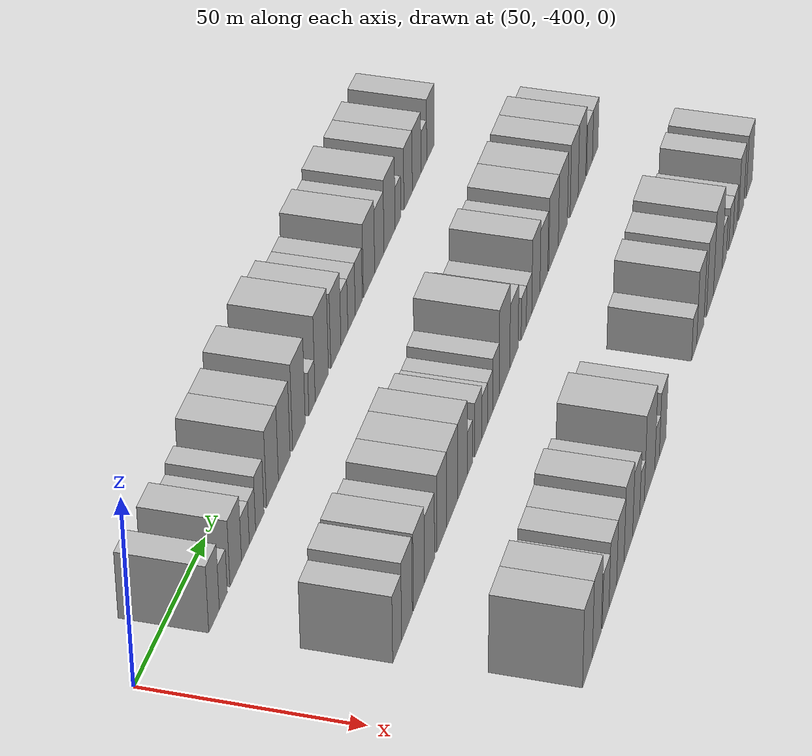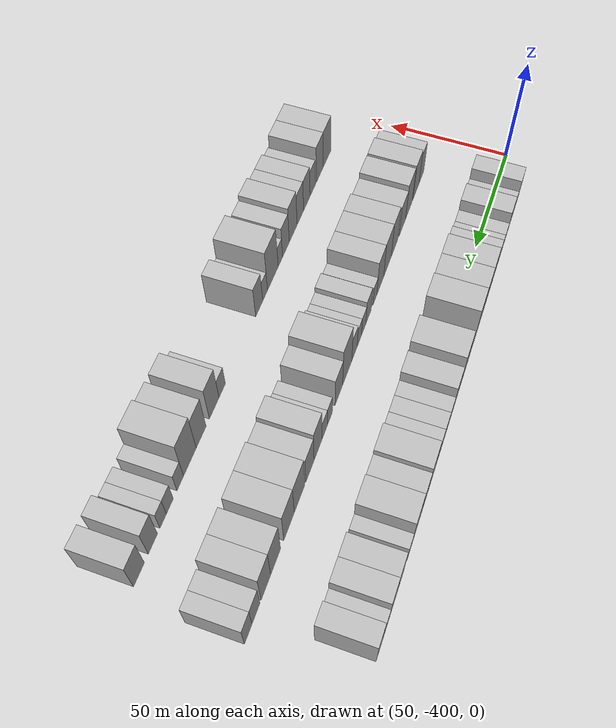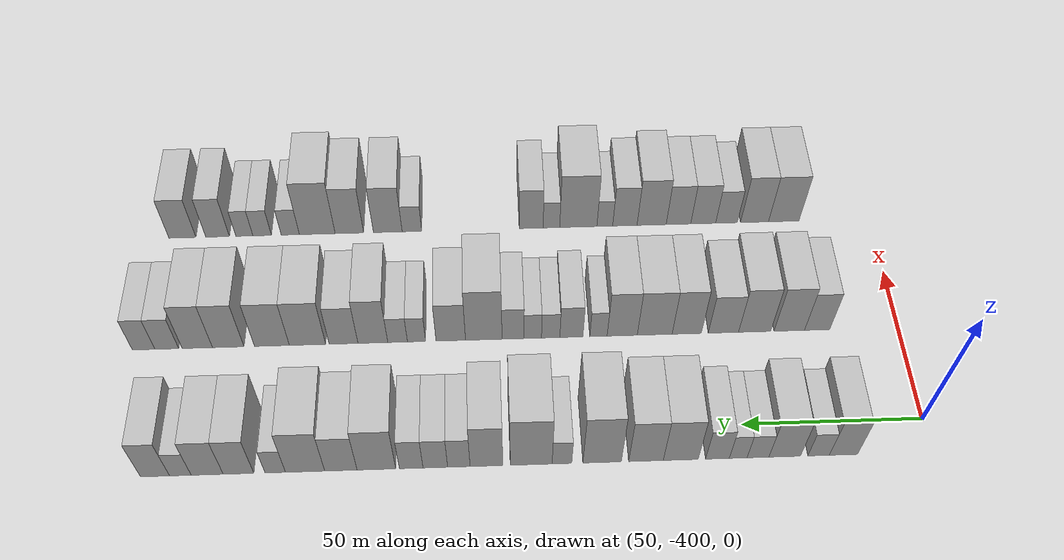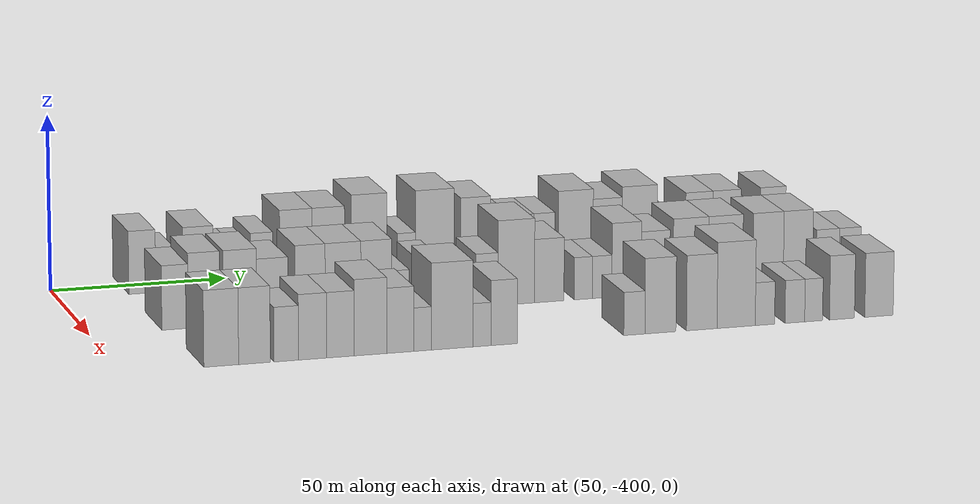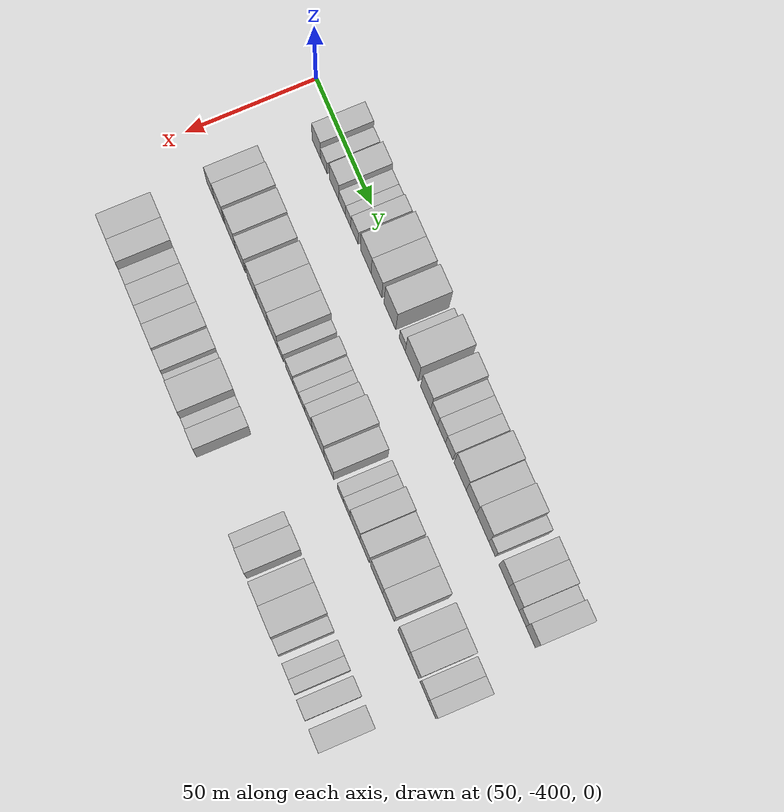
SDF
<sdf version="1.6">
 <world name="default">
  <model name="building_1">
   <static>1</static>
   <pose>50.0000 -376.1773 0 0.000000 0.000000 0.000000</pose>
   <link name="link">
    <pose>0 0 9.00 0 0 0</pose>
    <collision name="collision"><geometry><box><size>20.0000 7.6454 18.0000</size></box></geometry></collision>
    <visual name="visual">
     <cast_shadows>0</cast_shadows>
     <geometry><box><size>20.0000 7.6454 18.0000</size></box></geometry>
     <material>
      <script>
       <uri>model://HANNAS_wall/materials/scripts</uri>
       <uri>model://HANNAS_wall/materials/textures</uri>
       <name>vrc/HANNAS_wall</name>
      </script>
     </material>
    </visual>
   </link>
  </model>
  <model name="building_2">
   <static>1</static>
   <pose>50.0000 -369.4280 0 0.000000 0.000000 0.000000</pose>
   <link name="link">
    <pose>0 0 6.00 0 0 0</pose>
    <collision name="collision"><geometry><box><size>20.0000 5.8533 12.0000</size></box></geometry></collision>
    <visual name="visual">
     <cast_shadows>0</cast_shadows>
     <geometry><box><size>20.0000 5.8533 12.0000</size></box></geometry>
     <material>
      <script>
       <uri>model://HANNAS_wall/materials/scripts</uri>
       <uri>model://HANNAS_wall/materials/textures</uri>
       <name>vrc/HANNAS_wall</name>
      </script>
     </material>
    </visual>
   </link>
  </model>
  <model name="building_3">
   <static>1</static>
   <pose>50.0000 -360.2126 0 0.000000 0.000000 0.000000</pose>
   <link name="link">
    <pose>0 0 9.00 0 0 0</pose>
    <collision name="collision"><geometry><box><size>20.0000 8.5775 18.0000</size></box></geometry></collision>
    <visual name="visual">
     <cast_shadows>0</cast_shadows>
     <geometry><box><size>20.0000 8.5775 18.0000</size></box></geometry>
     <material>
      <script>
       <uri>model://HANNAS_wall/materials/scripts</uri>
       <uri>model://HANNAS_wall/materials/textures</uri>
       <name>vrc/HANNAS_wall</name>
      </script>
     </material>
    </visual>
   </link>
  </model>
  <model name="building_4">
   <static>1</static>
   <pose>50.0000 -352.9689 0 0.000000 0.000000 0.000000</pose>
   <link name="link">
    <pose>0 0 6.00 0 0 0</pose>
    <collision name="collision"><geometry><box><size>20.0000 5.9098 12.0000</size></box></geometry></collision>
    <visual name="visual">
     <cast_shadows>0</cast_shadows>
     <geometry><box><size>20.0000 5.9098 12.0000</size></box></geometry>
     <material>
      <script>
       <uri>model://HANNAS_wall/materials/scripts</uri>
       <uri>model://HANNAS_wall/materials/textures</uri>
       <name>vrc/HANNAS_wall</name>
      </script>
     </material>
    </visual>
   </link>
  </model>
  <model name="building_5">
   <static>1</static>
   <pose>50.0000 -347.6071 0 0.000000 0.000000 0.000000</pose>
   <link name="link">
    <pose>0 0 6.00 0 0 0</pose>
    <collision name="collision"><geometry><box><size>20.0000 4.8138 12.0000</size></box></geometry></collision>
    <visual name="visual">
     <cast_shadows>0</cast_shadows>
     <geometry><box><size>20.0000 4.8138 12.0000</size></box></geometry>
     <material>
      <script>
       <uri>model://HANNAS_wall/materials/scripts</uri>
       <uri>model://HANNAS_wall/materials/textures</uri>
       <name>vrc/HANNAS_wall</name>
      </script>
     </material>
    </visual>
   </link>
  </model>
  <model name="building_6">
   <static>1</static>
   <pose>50.0000 -341.9964 0 0.000000 0.000000 0.000000</pose>
   <link name="link">
    <pose>0 0 7.50 0 0 0</pose>
    <collision name="collision"><geometry><box><size>20.0000 6.4076 15.0000</size></box></geometry></collision>
    <visual name="visual">
     <cast_shadows>0</cast_shadows>
     <geometry><box><size>20.0000 6.4076 15.0000</size></box></geometry>
     <material>
      <script>
       <uri>model://HANNAS_wall/materials/scripts</uri>
       <uri>model://HANNAS_wall/materials/textures</uri>
       <name>vrc/HANNAS_wall</name>
      </script>
     </material>
    </visual>
   </link>
  </model>
  <model name="building_7">
   <static>1</static>
   <pose>50.0000 -332.0853 0 0.000000 0.000000 0.000000</pose>
   <link name="link">
    <pose>0 0 10.50 0 0 0</pose>
    <collision name="collision"><geometry><box><size>20.0000 9.4145 21.0000</size></box></geometry></collision>
    <visual name="visual">
     <cast_shadows>0</cast_shadows>
     <geometry><box><size>20.0000 9.4145 21.0000</size></box></geometry>
     <material>
      <script>
       <uri>model://HANNAS_wall/materials/scripts</uri>
       <uri>model://HANNAS_wall/materials/textures</uri>
       <name>vrc/HANNAS_wall</name>
      </script>
     </material>
    </visual>
   </link>
  </model>
  <model name="building_8">
   <static>1</static>
   <pose>50.0000 -322.7095 0 0.000000 0.000000 0.000000</pose>
   <link name="link">
    <pose>0 0 10.50 0 0 0</pose>
    <collision name="collision"><geometry><box><size>20.0000 9.3371 21.0000</size></box></geometry></collision>
    <visual name="visual">
     <cast_shadows>0</cast_shadows>
     <geometry><box><size>20.0000 9.3371 21.0000</size></box></geometry>
     <material>
      <script>
       <uri>model://HANNAS_wall/materials/scripts</uri>
       <uri>model://HANNAS_wall/materials/textures</uri>
       <name>vrc/HANNAS_wall</name>
      </script>
     </material>
    </visual>
   </link>
  </model>
  <model name="building_9">
   <static>1</static>
   <pose>50.0000 -310.8706 0 0.000000 0.000000 0.000000</pose>
   <link name="link">
    <pose>0 0 12.00 0 0 0</pose>
    <collision name="collision"><geometry><box><size>20.0000 10.3408 24.0000</size></box></geometry></collision>
    <visual name="visual">
     <cast_shadows>0</cast_shadows>
     <geometry><box><size>20.0000 10.3408 24.0000</size></box></geometry>
     <material>
      <script>
       <uri>model://HANNAS_wall/materials/scripts</uri>
       <uri>model://HANNAS_wall/materials/textures</uri>
       <name>vrc/HANNAS_wall</name>
      </script>
     </material>
    </visual>
   </link>
  </model>
  <model name="building_10">
   <static>1</static>
   <pose>50.0000 -300.0597 0 0.000000 0.000000 0.000000</pose>
   <link name="link">
    <pose>0 0 6.00 0 0 0</pose>
    <collision name="collision"><geometry><box><size>20.0000 5.2810 12.0000</size></box></geometry></collision>
    <visual name="visual">
     <cast_shadows>0</cast_shadows>
     <geometry><box><size>20.0000 5.2810 12.0000</size></box></geometry>
     <material>
      <script>
       <uri>model://HANNAS_wall/materials/scripts</uri>
       <uri>model://HANNAS_wall/materials/textures</uri>
       <name>vrc/HANNAS_wall</name>
      </script>
     </material>
    </visual>
   </link>
  </model>
  <model name="building_11">
   <static>1</static>
   <pose>50.0000 -291.8017 0 0.000000 0.000000 0.000000</pose>
   <link name="link">
    <pose>0 0 12.00 0 0 0</pose>
    <collision name="collision"><geometry><box><size>20.0000 11.2349 24.0000</size></box></geometry></collision>
    <visual name="visual">
     <cast_shadows>0</cast_shadows>
     <geometry><box><size>20.0000 11.2349 24.0000</size></box></geometry>
     <material>
      <script>
       <uri>model://HANNAS_wall/materials/scripts</uri>
       <uri>model://HANNAS_wall/materials/textures</uri>
       <name>vrc/HANNAS_wall</name>
      </script>
     </material>
    </visual>
   </link>
  </model>
  <model name="building_12">
   <static>1</static>
   <pose>50.0000 -279.7944 0 0.000000 0.000000 0.000000</pose>
   <link name="link">
    <pose>0 0 10.50 0 0 0</pose>
    <collision name="collision"><geometry><box><size>20.0000 8.7797 21.0000</size></box></geometry></collision>
    <visual name="visual">
     <cast_shadows>0</cast_shadows>
     <geometry><box><size>20.0000 8.7797 21.0000</size></box></geometry>
     <material>
      <script>
       <uri>model://HANNAS_wall/materials/scripts</uri>
       <uri>model://HANNAS_wall/materials/textures</uri>
       <name>vrc/HANNAS_wall</name>
      </script>
     </material>
    </visual>
   </link>
  </model>
  <model name="building_13">
   <static>1</static>
   <pose>50.0000 -272.3969 0 0.000000 0.000000 0.000000</pose>
   <link name="link">
    <pose>0 0 7.50 0 0 0</pose>
    <collision name="collision"><geometry><box><size>20.0000 6.0153 15.0000</size></box></geometry></collision>
    <visual name="visual">
     <cast_shadows>0</cast_shadows>
     <geometry><box><size>20.0000 6.0153 15.0000</size></box></geometry>
     <material>
      <script>
       <uri>model://HANNAS_wall/materials/scripts</uri>
       <uri>model://HANNAS_wall/materials/textures</uri>
       <name>vrc/HANNAS_wall</name>
      </script>
     </material>
    </visual>
   </link>
  </model>
  <model name="building_14">
   <static>1</static>
   <pose>50.0000 -266.0947 0 0.000000 0.000000 0.000000</pose>
   <link name="link">
    <pose>0 0 7.50 0 0 0</pose>
    <collision name="collision"><geometry><box><size>20.0000 6.5892 15.0000</size></box></geometry></collision>
    <visual name="visual">
     <cast_shadows>0</cast_shadows>
     <geometry><box><size>20.0000 6.5892 15.0000</size></box></geometry>
     <material>
      <script>
       <uri>model://HANNAS_wall/materials/scripts</uri>
       <uri>model://HANNAS_wall/materials/textures</uri>
       <name>vrc/HANNAS_wall</name>
      </script>
     </material>
    </visual>
   </link>
  </model>
  <model name="building_15">
   <static>1</static>
   <pose>50.0000 -259.6454 0 0.000000 0.000000 0.000000</pose>
   <link name="link">
    <pose>0 0 7.50 0 0 0</pose>
    <collision name="collision"><geometry><box><size>20.0000 6.3095 15.0000</size></box></geometry></collision>
    <visual name="visual">
     <cast_shadows>0</cast_shadows>
     <geometry><box><size>20.0000 6.3095 15.0000</size></box></geometry>
     <material>
      <script>
       <uri>model://HANNAS_wall/materials/scripts</uri>
       <uri>model://HANNAS_wall/materials/textures</uri>
       <name>vrc/HANNAS_wall</name>
      </script>
     </material>
    </visual>
   </link>
  </model>
  <model name="building_16">
   <static>1</static>
   <pose>50.0000 -250.3355 0 0.000000 0.000000 0.000000</pose>
   <link name="link">
    <pose>0 0 10.50 0 0 0</pose>
    <collision name="collision"><geometry><box><size>20.0000 10.3103 21.0000</size></box></geometry></collision>
    <visual name="visual">
     <cast_shadows>0</cast_shadows>
     <geometry><box><size>20.0000 10.3103 21.0000</size></box></geometry>
     <material>
      <script>
       <uri>model://HANNAS_wall/materials/scripts</uri>
       <uri>model://HANNAS_wall/materials/textures</uri>
       <name>vrc/HANNAS_wall</name>
      </script>
     </material>
    </visual>
   </link>
  </model>
  <model name="building_17">
   <static>1</static>
   <pose>50.0000 -240.8543 0 0.000000 0.000000 0.000000</pose>
   <link name="link">
    <pose>0 0 9.00 0 0 0</pose>
    <collision name="collision"><geometry><box><size>20.0000 8.6520 18.0000</size></box></geometry></collision>
    <visual name="visual">
     <cast_shadows>0</cast_shadows>
     <geometry><box><size>20.0000 8.6520 18.0000</size></box></geometry>
     <material>
      <script>
       <uri>model://HANNAS_wall/materials/scripts</uri>
       <uri>model://HANNAS_wall/materials/textures</uri>
       <name>vrc/HANNAS_wall</name>
      </script>
     </material>
    </visual>
   </link>
  </model>
  <model name="building_18">
   <static>1</static>
   <pose>50.0000 -231.2981 0 0.000000 0.000000 0.000000</pose>
   <link name="link">
    <pose>0 0 10.50 0 0 0</pose>
    <collision name="collision"><geometry><box><size>20.0000 10.4602 21.0000</size></box></geometry></collision>
    <visual name="visual">
     <cast_shadows>0</cast_shadows>
     <geometry><box><size>20.0000 10.4602 21.0000</size></box></geometry>
     <material>
      <script>
       <uri>model://HANNAS_wall/materials/scripts</uri>
       <uri>model://HANNAS_wall/materials/textures</uri>
       <name>vrc/HANNAS_wall</name>
      </script>
     </material>
    </visual>
   </link>
  </model>
  <model name="building_19">
   <static>1</static>
   <pose>50.0000 -223.3502 0 0.000000 0.000000 0.000000</pose>
   <link name="link">
    <pose>0 0 6.00 0 0 0</pose>
    <collision name="collision"><geometry><box><size>20.0000 5.4357 12.0000</size></box></geometry></collision>
    <visual name="visual">
     <cast_shadows>0</cast_shadows>
     <geometry><box><size>20.0000 5.4357 12.0000</size></box></geometry>
     <material>
      <script>
       <uri>model://HANNAS_wall/materials/scripts</uri>
       <uri>model://HANNAS_wall/materials/textures</uri>
       <name>vrc/HANNAS_wall</name>
      </script>
     </material>
    </visual>
   </link>
  </model>
  <model name="building_20">
   <static>1</static>
   <pose>50.0000 -213.5637 0 0.000000 0.000000 0.000000</pose>
   <link name="link">
    <pose>0 0 9.00 0 0 0</pose>
    <collision name="collision"><geometry><box><size>20.0000 8.1372 18.0000</size></box></geometry></collision>
    <visual name="visual">
     <cast_shadows>0</cast_shadows>
     <geometry><box><size>20.0000 8.1372 18.0000</size></box></geometry>
     <material>
      <script>
       <uri>model://HANNAS_wall/materials/scripts</uri>
       <uri>model://HANNAS_wall/materials/textures</uri>
       <name>vrc/HANNAS_wall</name>
      </script>
     </material>
    </visual>
   </link>
  </model>
  <model name="building_21">
   <static>1</static>
   <pose>50.0000 -205.2399 0 0.000000 0.000000 0.000000</pose>
   <link name="link">
    <pose>0 0 9.00 0 0 0</pose>
    <collision name="collision"><geometry><box><size>20.0000 8.5105 18.0000</size></box></geometry></collision>
    <visual name="visual">
     <cast_shadows>0</cast_shadows>
     <geometry><box><size>20.0000 8.5105 18.0000</size></box></geometry>
     <material>
      <script>
       <uri>model://HANNAS_wall/materials/scripts</uri>
       <uri>model://HANNAS_wall/materials/textures</uri>
       <name>vrc/HANNAS_wall</name>
      </script>
     </material>
    </visual>
   </link>
  </model>
  <model name="building_22">
   <static>1</static>
   <pose>50.0000 -198.1130 0 0.000000 0.000000 0.000000</pose>
   <link name="link">
    <pose>0 0 6.00 0 0 0</pose>
    <collision name="collision"><geometry><box><size>20.0000 5.7434 12.0000</size></box></geometry></collision>
    <visual name="visual">
     <cast_shadows>0</cast_shadows>
     <geometry><box><size>20.0000 5.7434 12.0000</size></box></geometry>
     <material>
      <script>
       <uri>model://HANNAS_wall/materials/scripts</uri>
       <uri>model://HANNAS_wall/materials/textures</uri>
       <name>vrc/HANNAS_wall</name>
      </script>
     </material>
    </visual>
   </link>
  </model>
  <model name="building_23">
   <static>1</static>
   <pose>50.0000 -191.3917 0 0.000000 0.000000 0.000000</pose>
   <link name="link">
    <pose>0 0 9.00 0 0 0</pose>
    <collision name="collision"><geometry><box><size>20.0000 7.6992 18.0000</size></box></geometry></collision>
    <visual name="visual">
     <cast_shadows>0</cast_shadows>
     <geometry><box><size>20.0000 7.6992 18.0000</size></box></geometry>
     <material>
      <script>
       <uri>model://HANNAS_wall/materials/scripts</uri>
       <uri>model://HANNAS_wall/materials/textures</uri>
       <name>vrc/HANNAS_wall</name>
      </script>
     </material>
    </visual>
   </link>
  </model>
  <model name="building_91">
   <static>1</static>
   <pose>90.0000 -376.3325 0 0.000000 0.000000 0.000000</pose>
   <link name="link">
    <pose>0 0 9.00 0 0 0</pose>
    <collision name="collision"><geometry><box><size>20.0000 7.3351 18.0000</size></box></geometry></collision>
    <visual name="visual">
     <cast_shadows>0</cast_shadows>
     <geometry><box><size>20.0000 7.3351 18.0000</size></box></geometry>
     <material>
      <script>
       <uri>model://HANNAS_wall/materials/scripts</uri>
       <uri>model://HANNAS_wall/materials/textures</uri>
       <name>vrc/HANNAS_wall</name>
      </script>
     </material>
    </visual>
   </link>
  </model>
  <model name="building_92">
   <static>1</static>
   <pose>90.0000 -368.2285 0 0.000000 0.000000 0.000000</pose>
   <link name="link">
    <pose>0 0 10.50 0 0 0</pose>
    <collision name="collision"><geometry><box><size>20.0000 8.8730 21.0000</size></box></geometry></collision>
    <visual name="visual">
     <cast_shadows>0</cast_shadows>
     <geometry><box><size>20.0000 8.8730 21.0000</size></box></geometry>
     <material>
      <script>
       <uri>model://HANNAS_wall/materials/scripts</uri>
       <uri>model://HANNAS_wall/materials/textures</uri>
       <name>vrc/HANNAS_wall</name>
      </script>
     </material>
    </visual>
   </link>
  </model>
  <model name="building_93">
   <static>1</static>
   <pose>90.0000 -358.1230 0 0.000000 0.000000 0.000000</pose>
   <link name="link">
    <pose>0 0 10.50 0 0 0</pose>
    <collision name="collision"><geometry><box><size>20.0000 9.3380 21.0000</size></box></geometry></collision>
    <visual name="visual">
     <cast_shadows>0</cast_shadows>
     <geometry><box><size>20.0000 9.3380 21.0000</size></box></geometry>
     <material>
      <script>
       <uri>model://HANNAS_wall/materials/scripts</uri>
       <uri>model://HANNAS_wall/materials/textures</uri>
       <name>vrc/HANNAS_wall</name>
      </script>
     </material>
    </visual>
   </link>
  </model>
  <model name="building_94">
   <static>1</static>
   <pose>90.0000 -349.0626 0 0.000000 0.000000 0.000000</pose>
   <link name="link">
    <pose>0 0 9.00 0 0 0</pose>
    <collision name="collision"><geometry><box><size>20.0000 8.7827 18.0000</size></box></geometry></collision>
    <visual name="visual">
     <cast_shadows>0</cast_shadows>
     <geometry><box><size>20.0000 8.7827 18.0000</size></box></geometry>
     <material>
      <script>
       <uri>model://HANNAS_wall/materials/scripts</uri>
       <uri>model://HANNAS_wall/materials/textures</uri>
       <name>vrc/HANNAS_wall</name>
      </script>
     </material>
    </visual>
   </link>
  </model>
  <model name="building_95">
   <static>1</static>
   <pose>90.0000 -338.4254 0 0.000000 0.000000 0.000000</pose>
   <link name="link">
    <pose>0 0 10.50 0 0 0</pose>
    <collision name="collision"><geometry><box><size>20.0000 8.4918 21.0000</size></box></geometry></collision>
    <visual name="visual">
     <cast_shadows>0</cast_shadows>
     <geometry><box><size>20.0000 8.4918 21.0000</size></box></geometry>
     <material>
      <script>
       <uri>model://HANNAS_wall/materials/scripts</uri>
       <uri>model://HANNAS_wall/materials/textures</uri>
       <name>vrc/HANNAS_wall</name>
      </script>
     </material>
    </visual>
   </link>
  </model>
  <model name="building_96">
   <static>1</static>
   <pose>90.0000 -329.1354 0 0.000000 0.000000 0.000000</pose>
   <link name="link">
    <pose>0 0 10.50 0 0 0</pose>
    <collision name="collision"><geometry><box><size>20.0000 10.0883 21.0000</size></box></geometry></collision>
    <visual name="visual">
     <cast_shadows>0</cast_shadows>
     <geometry><box><size>20.0000 10.0883 21.0000</size></box></geometry>
     <material>
      <script>
       <uri>model://HANNAS_wall/materials/scripts</uri>
       <uri>model://HANNAS_wall/materials/textures</uri>
       <name>vrc/HANNAS_wall</name>
      </script>
     </material>
    </visual>
   </link>
  </model>
  <model name="building_97">
   <static>1</static>
   <pose>90.0000 -319.7221 0 0.000000 0.000000 0.000000</pose>
   <link name="link">
    <pose>0 0 10.50 0 0 0</pose>
    <collision name="collision"><geometry><box><size>20.0000 8.7383 21.0000</size></box></geometry></collision>
    <visual name="visual">
     <cast_shadows>0</cast_shadows>
     <geometry><box><size>20.0000 8.7383 21.0000</size></box></geometry>
     <material>
      <script>
       <uri>model://HANNAS_wall/materials/scripts</uri>
       <uri>model://HANNAS_wall/materials/textures</uri>
       <name>vrc/HANNAS_wall</name>
      </script>
     </material>
    </visual>
   </link>
  </model>
  <model name="building_98">
   <static>1</static>
   <pose>90.0000 -312.8563 0 0.000000 0.000000 0.000000</pose>
   <link name="link">
    <pose>0 0 6.00 0 0 0</pose>
    <collision name="collision"><geometry><box><size>20.0000 4.9933 12.0000</size></box></geometry></collision>
    <visual name="visual">
     <cast_shadows>0</cast_shadows>
     <geometry><box><size>20.0000 4.9933 12.0000</size></box></geometry>
     <material>
      <script>
       <uri>model://HANNAS_wall/materials/scripts</uri>
       <uri>model://HANNAS_wall/materials/textures</uri>
       <name>vrc/HANNAS_wall</name>
      </script>
     </material>
    </visual>
   </link>
  </model>
  <model name="building_99">
   <static>1</static>
   <pose>90.0000 -305.0267 0 0.000000 0.000000 0.000000</pose>
   <link name="link">
    <pose>0 0 7.50 0 0 0</pose>
    <collision name="collision"><geometry><box><size>20.0000 6.6660 15.0000</size></box></geometry></collision>
    <visual name="visual">
     <cast_shadows>0</cast_shadows>
     <geometry><box><size>20.0000 6.6660 15.0000</size></box></geometry>
     <material>
      <script>
       <uri>model://HANNAS_wall/materials/scripts</uri>
       <uri>model://HANNAS_wall/materials/textures</uri>
       <name>vrc/HANNAS_wall</name>
      </script>
     </material>
    </visual>
   </link>
  </model>
  <model name="building_100">
   <static>1</static>
   <pose>90.0000 -299.0484 0 0.000000 0.000000 0.000000</pose>
   <link name="link">
    <pose>0 0 6.00 0 0 0</pose>
    <collision name="collision"><geometry><box><size>20.0000 5.2906 12.0000</size></box></geometry></collision>
    <visual name="visual">
     <cast_shadows>0</cast_shadows>
     <geometry><box><size>20.0000 5.2906 12.0000</size></box></geometry>
     <material>
      <script>
       <uri>model://HANNAS_wall/materials/scripts</uri>
       <uri>model://HANNAS_wall/materials/textures</uri>
       <name>vrc/HANNAS_wall</name>
      </script>
     </material>
    </visual>
   </link>
  </model>
  <model name="building_101">
   <static>1</static>
   <pose>90.0000 -293.8878 0 0.000000 0.000000 0.000000</pose>
   <link name="link">
    <pose>0 0 6.00 0 0 0</pose>
    <collision name="collision"><geometry><box><size>20.0000 5.0306 12.0000</size></box></geometry></collision>
    <visual name="visual">
     <cast_shadows>0</cast_shadows>
     <geometry><box><size>20.0000 5.0306 12.0000</size></box></geometry>
     <material>
      <script>
       <uri>model://HANNAS_wall/materials/scripts</uri>
       <uri>model://HANNAS_wall/materials/textures</uri>
       <name>vrc/HANNAS_wall</name>
      </script>
     </material>
    </visual>
   </link>
  </model>
  <model name="building_102">
   <static>1</static>
   <pose>90.0000 -288.2027 0 0.000000 0.000000 0.000000</pose>
   <link name="link">
    <pose>0 0 7.50 0 0 0</pose>
    <collision name="collision"><geometry><box><size>20.0000 6.3395 15.0000</size></box></geometry></collision>
    <visual name="visual">
     <cast_shadows>0</cast_shadows>
     <geometry><box><size>20.0000 6.3395 15.0000</size></box></geometry>
     <material>
      <script>
       <uri>model://HANNAS_wall/materials/scripts</uri>
       <uri>model://HANNAS_wall/materials/textures</uri>
       <name>vrc/HANNAS_wall</name>
      </script>
     </material>
    </visual>
   </link>
  </model>
  <model name="building_103">
   <static>1</static>
   <pose>90.0000 -279.7752 0 0.000000 0.000000 0.000000</pose>
   <link name="link">
    <pose>0 0 12.00 0 0 0</pose>
    <collision name="collision"><geometry><box><size>20.0000 10.5155 24.0000</size></box></geometry></collision>
    <visual name="visual">
     <cast_shadows>0</cast_shadows>
     <geometry><box><size>20.0000 10.5155 24.0000</size></box></geometry>
     <material>
      <script>
       <uri>model://HANNAS_wall/materials/scripts</uri>
       <uri>model://HANNAS_wall/materials/textures</uri>
       <name>vrc/HANNAS_wall</name>
      </script>
     </material>
    </visual>
   </link>
  </model>
  <model name="building_104">
   <static>1</static>
   <pose>90.0000 -270.2797 0 0.000000 0.000000 0.000000</pose>
   <link name="link">
    <pose>0 0 9.00 0 0 0</pose>
    <collision name="collision"><geometry><box><size>20.0000 8.4756 18.0000</size></box></geometry></collision>
    <visual name="visual">
     <cast_shadows>0</cast_shadows>
     <geometry><box><size>20.0000 8.4756 18.0000</size></box></geometry>
     <material>
      <script>
       <uri>model://HANNAS_wall/materials/scripts</uri>
       <uri>model://HANNAS_wall/materials/textures</uri>
       <name>vrc/HANNAS_wall</name>
      </script>
     </material>
    </visual>
   </link>
  </model>
  <model name="building_105">
   <static>1</static>
   <pose>90.0000 -260.4324 0 0.000000 0.000000 0.000000</pose>
   <link name="link">
    <pose>0 0 6.00 0 0 0</pose>
    <collision name="collision"><geometry><box><size>20.0000 5.2190 12.0000</size></box></geometry></collision>
    <visual name="visual">
     <cast_shadows>0</cast_shadows>
     <geometry><box><size>20.0000 5.2190 12.0000</size></box></geometry>
     <material>
      <script>
       <uri>model://HANNAS_wall/materials/scripts</uri>
       <uri>model://HANNAS_wall/materials/textures</uri>
       <name>vrc/HANNAS_wall</name>
      </script>
     </material>
    </visual>
   </link>
  </model>
  <model name="building_106">
   <static>1</static>
   <pose>90.0000 -254.9983 0 0.000000 0.000000 0.000000</pose>
   <link name="link">
    <pose>0 0 6.00 0 0 0</pose>
    <collision name="collision"><geometry><box><size>20.0000 5.6492 12.0000</size></box></geometry></collision>
    <visual name="visual">
     <cast_shadows>0</cast_shadows>
     <geometry><box><size>20.0000 5.6492 12.0000</size></box></geometry>
     <material>
      <script>
       <uri>model://HANNAS_wall/materials/scripts</uri>
       <uri>model://HANNAS_wall/materials/textures</uri>
       <name>vrc/HANNAS_wall</name>
      </script>
     </material>
    </visual>
   </link>
  </model>
  <model name="building_107">
   <static>1</static>
   <pose>90.0000 -247.8968 0 0.000000 0.000000 0.000000</pose>
   <link name="link">
    <pose>0 0 10.50 0 0 0</pose>
    <collision name="collision"><geometry><box><size>20.0000 8.5538 21.0000</size></box></geometry></collision>
    <visual name="visual">
     <cast_shadows>0</cast_shadows>
     <geometry><box><size>20.0000 8.5538 21.0000</size></box></geometry>
     <material>
      <script>
       <uri>model://HANNAS_wall/materials/scripts</uri>
       <uri>model://HANNAS_wall/materials/textures</uri>
       <name>vrc/HANNAS_wall</name>
      </script>
     </material>
    </visual>
   </link>
  </model>
  <model name="building_108">
   <static>1</static>
   <pose>90.0000 -239.4897 0 0.000000 0.000000 0.000000</pose>
   <link name="link">
    <pose>0 0 9.00 0 0 0</pose>
    <collision name="collision"><geometry><box><size>20.0000 8.2604 18.0000</size></box></geometry></collision>
    <visual name="visual">
     <cast_shadows>0</cast_shadows>
     <geometry><box><size>20.0000 8.2604 18.0000</size></box></geometry>
     <material>
      <script>
       <uri>model://HANNAS_wall/materials/scripts</uri>
       <uri>model://HANNAS_wall/materials/textures</uri>
       <name>vrc/HANNAS_wall</name>
      </script>
     </material>
    </visual>
   </link>
  </model>
  <model name="building_109">
   <static>1</static>
   <pose>90.0000 -229.1616 0 0.000000 0.000000 0.000000</pose>
   <link name="link">
    <pose>0 0 10.50 0 0 0</pose>
    <collision name="collision"><geometry><box><size>20.0000 10.3957 21.0000</size></box></geometry></collision>
    <visual name="visual">
     <cast_shadows>0</cast_shadows>
     <geometry><box><size>20.0000 10.3957 21.0000</size></box></geometry>
     <material>
      <script>
       <uri>model://HANNAS_wall/materials/scripts</uri>
       <uri>model://HANNAS_wall/materials/textures</uri>
       <name>vrc/HANNAS_wall</name>
      </script>
     </material>
    </visual>
   </link>
  </model>
  <model name="building_110">
   <static>1</static>
   <pose>90.0000 -218.9767 0 0.000000 0.000000 0.000000</pose>
   <link name="link">
    <pose>0 0 10.50 0 0 0</pose>
    <collision name="collision"><geometry><box><size>20.0000 9.9743 21.0000</size></box></geometry></collision>
    <visual name="visual">
     <cast_shadows>0</cast_shadows>
     <geometry><box><size>20.0000 9.9743 21.0000</size></box></geometry>
     <material>
      <script>
       <uri>model://HANNAS_wall/materials/scripts</uri>
       <uri>model://HANNAS_wall/materials/textures</uri>
       <name>vrc/HANNAS_wall</name>
      </script>
     </material>
    </visual>
   </link>
  </model>
  <model name="building_111">
   <static>1</static>
   <pose>90.0000 -206.4961 0 0.000000 0.000000 0.000000</pose>
   <link name="link">
    <pose>0 0 10.50 0 0 0</pose>
    <collision name="collision"><geometry><box><size>20.0000 8.9868 21.0000</size></box></geometry></collision>
    <visual name="visual">
     <cast_shadows>0</cast_shadows>
     <geometry><box><size>20.0000 8.9868 21.0000</size></box></geometry>
     <material>
      <script>
       <uri>model://HANNAS_wall/materials/scripts</uri>
       <uri>model://HANNAS_wall/materials/textures</uri>
       <name>vrc/HANNAS_wall</name>
      </script>
     </material>
    </visual>
   </link>
  </model>
  <model name="building_112">
   <static>1</static>
   <pose>90.0000 -197.6826 0 0.000000 0.000000 0.000000</pose>
   <link name="link">
    <pose>0 0 10.50 0 0 0</pose>
    <collision name="collision"><geometry><box><size>20.0000 8.6402 21.0000</size></box></geometry></collision>
    <visual name="visual">
     <cast_shadows>0</cast_shadows>
     <geometry><box><size>20.0000 8.6402 21.0000</size></box></geometry>
     <material>
      <script>
       <uri>model://HANNAS_wall/materials/scripts</uri>
       <uri>model://HANNAS_wall/materials/textures</uri>
       <name>vrc/HANNAS_wall</name>
      </script>
     </material>
    </visual>
   </link>
  </model>
  <model name="building_113">
   <static>1</static>
   <pose>90.0000 -188.9619 0 0.000000 0.000000 0.000000</pose>
   <link name="link">
    <pose>0 0 7.50 0 0 0</pose>
    <collision name="collision"><geometry><box><size>20.0000 6.8013 15.0000</size></box></geometry></collision>
    <visual name="visual">
     <cast_shadows>0</cast_shadows>
     <geometry><box><size>20.0000 6.8013 15.0000</size></box></geometry>
     <material>
      <script>
       <uri>model://HANNAS_wall/materials/scripts</uri>
       <uri>model://HANNAS_wall/materials/textures</uri>
       <name>vrc/HANNAS_wall</name>
      </script>
     </material>
    </visual>
   </link>
  </model>
  <model name="building_114">
   <static>1</static>
   <pose>90.0000 -182.3572 0 0.000000 0.000000 0.000000</pose>
   <link name="link">
    <pose>0 0 7.50 0 0 0</pose>
    <collision name="collision"><geometry><box><size>20.0000 6.4080 15.0000</size></box></geometry></collision>
    <visual name="visual">
     <cast_shadows>0</cast_shadows>
     <geometry><box><size>20.0000 6.4080 15.0000</size></box></geometry>
     <material>
      <script>
       <uri>model://HANNAS_wall/materials/scripts</uri>
       <uri>model://HANNAS_wall/materials/textures</uri>
       <name>vrc/HANNAS_wall</name>
      </script>
     </material>
    </visual>
   </link>
  </model>
  <model name="building_185">
   <static>1</static>
   <pose>130.0000 -373.2592 0 0.000000 0.000000 0.000000</pose>
   <link name="link">
    <pose>0 0 10.50 0 0 0</pose>
    <collision name="collision"><geometry><box><size>20.0000 9.4817 21.0000</size></box></geometry></collision>
    <visual name="visual">
     <cast_shadows>0</cast_shadows>
     <geometry><box><size>20.0000 9.4817 21.0000</size></box></geometry>
     <material>
      <script>
       <uri>model://HANNAS_wall/materials/scripts</uri>
       <uri>model://HANNAS_wall/materials/textures</uri>
       <name>vrc/HANNAS_wall</name>
      </script>
     </material>
    </visual>
   </link>
  </model>
  <model name="building_186">
   <static>1</static>
   <pose>130.0000 -364.1806 0 0.000000 0.000000 0.000000</pose>
   <link name="link">
    <pose>0 0 10.50 0 0 0</pose>
    <collision name="collision"><geometry><box><size>20.0000 8.6754 21.0000</size></box></geometry></collision>
    <visual name="visual">
     <cast_shadows>0</cast_shadows>
     <geometry><box><size>20.0000 8.6754 21.0000</size></box></geometry>
     <material>
      <script>
       <uri>model://HANNAS_wall/materials/scripts</uri>
       <uri>model://HANNAS_wall/materials/textures</uri>
       <name>vrc/HANNAS_wall</name>
      </script>
     </material>
    </visual>
   </link>
  </model>
  <model name="building_187">
   <static>1</static>
   <pose>130.0000 -355.4772 0 0.000000 0.000000 0.000000</pose>
   <link name="link">
    <pose>0 0 7.50 0 0 0</pose>
    <collision name="collision"><geometry><box><size>20.0000 6.7315 15.0000</size></box></geometry></collision>
    <visual name="visual">
     <cast_shadows>0</cast_shadows>
     <geometry><box><size>20.0000 6.7315 15.0000</size></box></geometry>
     <material>
      <script>
       <uri>model://HANNAS_wall/materials/scripts</uri>
       <uri>model://HANNAS_wall/materials/textures</uri>
       <name>vrc/HANNAS_wall</name>
      </script>
     </material>
    </visual>
   </link>
  </model>
  <model name="building_188">
   <static>1</static>
   <pose>130.0000 -348.2395 0 0.000000 0.000000 0.000000</pose>
   <link name="link">
    <pose>0 0 9.00 0 0 0</pose>
    <collision name="collision"><geometry><box><size>20.0000 7.7438 18.0000</size></box></geometry></collision>
    <visual name="visual">
     <cast_shadows>0</cast_shadows>
     <geometry><box><size>20.0000 7.7438 18.0000</size></box></geometry>
     <material>
      <script>
       <uri>model://HANNAS_wall/materials/scripts</uri>
       <uri>model://HANNAS_wall/materials/textures</uri>
       <name>vrc/HANNAS_wall</name>
      </script>
     </material>
    </visual>
   </link>
  </model>
  <model name="building_189">
   <static>1</static>
   <pose>130.0000 -340.5703 0 0.000000 0.000000 0.000000</pose>
   <link name="link">
    <pose>0 0 9.00 0 0 0</pose>
    <collision name="collision"><geometry><box><size>20.0000 7.5945 18.0000</size></box></geometry></collision>
    <visual name="visual">
     <cast_shadows>0</cast_shadows>
     <geometry><box><size>20.0000 7.5945 18.0000</size></box></geometry>
     <material>
      <script>
       <uri>model://HANNAS_wall/materials/scripts</uri>
       <uri>model://HANNAS_wall/materials/textures</uri>
       <name>vrc/HANNAS_wall</name>
      </script>
     </material>
    </visual>
   </link>
  </model>
  <model name="building_190">
   <static>1</static>
   <pose>130.0000 -332.2634 0 0.000000 0.000000 0.000000</pose>
   <link name="link">
    <pose>0 0 10.50 0 0 0</pose>
    <collision name="collision"><geometry><box><size>20.0000 9.0194 21.0000</size></box></geometry></collision>
    <visual name="visual">
     <cast_shadows>0</cast_shadows>
     <geometry><box><size>20.0000 9.0194 21.0000</size></box></geometry>
     <material>
      <script>
       <uri>model://HANNAS_wall/materials/scripts</uri>
       <uri>model://HANNAS_wall/materials/textures</uri>
       <name>vrc/HANNAS_wall</name>
      </script>
     </material>
    </visual>
   </link>
  </model>
  <model name="building_191">
   <static>1</static>
   <pose>130.0000 -323.9787 0 0.000000 0.000000 0.000000</pose>
   <link name="link">
    <pose>0 0 9.00 0 0 0</pose>
    <collision name="collision"><geometry><box><size>20.0000 7.5500 18.0000</size></box></geometry></collision>
    <visual name="visual">
     <cast_shadows>0</cast_shadows>
     <geometry><box><size>20.0000 7.5500 18.0000</size></box></geometry>
     <material>
      <script>
       <uri>model://HANNAS_wall/materials/scripts</uri>
       <uri>model://HANNAS_wall/materials/textures</uri>
       <name>vrc/HANNAS_wall</name>
      </script>
     </material>
    </visual>
   </link>
  </model>
  <model name="building_192">
   <static>1</static>
   <pose>130.0000 -317.7672 0 0.000000 0.000000 0.000000</pose>
   <link name="link">
    <pose>0 0 6.00 0 0 0</pose>
    <collision name="collision"><geometry><box><size>20.0000 4.8729 12.0000</size></box></geometry></collision>
    <visual name="visual">
     <cast_shadows>0</cast_shadows>
     <geometry><box><size>20.0000 4.8729 12.0000</size></box></geometry>
     <material>
      <script>
       <uri>model://HANNAS_wall/materials/scripts</uri>
       <uri>model://HANNAS_wall/materials/textures</uri>
       <name>vrc/HANNAS_wall</name>
      </script>
     </material>
    </visual>
   </link>
  </model>
  <model name="building_193">
   <static>1</static>
   <pose>130.0000 -309.5876 0 0.000000 0.000000 0.000000</pose>
   <link name="link">
    <pose>0 0 12.00 0 0 0</pose>
    <collision name="collision"><geometry><box><size>20.0000 11.4862 24.0000</size></box></geometry></collision>
    <visual name="visual">
     <cast_shadows>0</cast_shadows>
     <geometry><box><size>20.0000 11.4862 24.0000</size></box></geometry>
     <material>
      <script>
       <uri>model://HANNAS_wall/materials/scripts</uri>
       <uri>model://HANNAS_wall/materials/textures</uri>
       <name>vrc/HANNAS_wall</name>
      </script>
     </material>
    </visual>
   </link>
  </model>
  <model name="building_194">
   <static>1</static>
   <pose>130.0000 -301.2904 0 0.000000 0.000000 0.000000</pose>
   <link name="link">
    <pose>0 0 6.00 0 0 0</pose>
    <collision name="collision"><geometry><box><size>20.0000 5.1083 12.0000</size></box></geometry></collision>
    <visual name="visual">
     <cast_shadows>0</cast_shadows>
     <geometry><box><size>20.0000 5.1083 12.0000</size></box></geometry>
     <material>
      <script>
       <uri>model://HANNAS_wall/materials/scripts</uri>
       <uri>model://HANNAS_wall/materials/textures</uri>
       <name>vrc/HANNAS_wall</name>
      </script>
     </material>
    </visual>
   </link>
  </model>
  <model name="building_195">
   <static>1</static>
   <pose>130.0000 -295.0573 0 0.000000 0.000000 0.000000</pose>
   <link name="link">
    <pose>0 0 9.00 0 0 0</pose>
    <collision name="collision"><geometry><box><size>20.0000 7.3577 18.0000</size></box></geometry></collision>
    <visual name="visual">
     <cast_shadows>0</cast_shadows>
     <geometry><box><size>20.0000 7.3577 18.0000</size></box></geometry>
     <material>
      <script>
       <uri>model://HANNAS_wall/materials/scripts</uri>
       <uri>model://HANNAS_wall/materials/textures</uri>
       <name>vrc/HANNAS_wall</name>
      </script>
     </material>
    </visual>
   </link>
  </model>
  <model name="building_196">
   <static>1</static>
   <pose>130.0000 -258.3832 0 0.000000 0.000000 0.000000</pose>
   <link name="link">
    <pose>0 0 6.00 0 0 0</pose>
    <collision name="collision"><geometry><box><size>20.0000 5.9968 12.0000</size></box></geometry></collision>
    <visual name="visual">
     <cast_shadows>0</cast_shadows>
     <geometry><box><size>20.0000 5.9968 12.0000</size></box></geometry>
     <material>
      <script>
       <uri>model://HANNAS_wall/materials/scripts</uri>
       <uri>model://HANNAS_wall/materials/textures</uri>
       <name>vrc/HANNAS_wall</name>
      </script>
     </material>
    </visual>
   </link>
  </model>
  <model name="building_197">
   <static>1</static>
   <pose>130.0000 -250.9775 0 0.000000 0.000000 0.000000</pose>
   <link name="link">
    <pose>0 0 10.50 0 0 0</pose>
    <collision name="collision"><geometry><box><size>20.0000 8.8146 21.0000</size></box></geometry></collision>
    <visual name="visual">
     <cast_shadows>0</cast_shadows>
     <geometry><box><size>20.0000 8.8146 21.0000</size></box></geometry>
     <material>
      <script>
       <uri>model://HANNAS_wall/materials/scripts</uri>
       <uri>model://HANNAS_wall/materials/textures</uri>
       <name>vrc/HANNAS_wall</name>
      </script>
     </material>
    </visual>
   </link>
  </model>
  <model name="building_198">
   <static>1</static>
   <pose>130.0000 -239.2063 0 0.000000 0.000000 0.000000</pose>
   <link name="link">
    <pose>0 0 10.50 0 0 0</pose>
    <collision name="collision"><geometry><box><size>20.0000 8.7278 21.0000</size></box></geometry></collision>
    <visual name="visual">
     <cast_shadows>0</cast_shadows>
     <geometry><box><size>20.0000 8.7278 21.0000</size></box></geometry>
     <material>
      <script>
       <uri>model://HANNAS_wall/materials/scripts</uri>
       <uri>model://HANNAS_wall/materials/textures</uri>
       <name>vrc/HANNAS_wall</name>
      </script>
     </material>
    </visual>
   </link>
  </model>
  <model name="building_199">
   <static>1</static>
   <pose>130.0000 -229.3676 0 0.000000 0.000000 0.000000</pose>
   <link name="link">
    <pose>0 0 12.00 0 0 0</pose>
    <collision name="collision"><geometry><box><size>20.0000 10.9495 24.0000</size></box></geometry></collision>
    <visual name="visual">
     <cast_shadows>0</cast_shadows>
     <geometry><box><size>20.0000 10.9495 24.0000</size></box></geometry>
     <material>
      <script>
       <uri>model://HANNAS_wall/materials/scripts</uri>
       <uri>model://HANNAS_wall/materials/textures</uri>
       <name>vrc/HANNAS_wall</name>
      </script>
     </material>
    </visual>
   </link>
  </model>
  <model name="building_200">
   <static>1</static>
   <pose>130.0000 -221.1133 0 0.000000 0.000000 0.000000</pose>
   <link name="link">
    <pose>0 0 6.00 0 0 0</pose>
    <collision name="collision"><geometry><box><size>20.0000 5.5591 12.0000</size></box></geometry></collision>
    <visual name="visual">
     <cast_shadows>0</cast_shadows>
     <geometry><box><size>20.0000 5.5591 12.0000</size></box></geometry>
     <material>
      <script>
       <uri>model://HANNAS_wall/materials/scripts</uri>
       <uri>model://HANNAS_wall/materials/textures</uri>
       <name>vrc/HANNAS_wall</name>
      </script>
     </material>
    </visual>
   </link>
  </model>
  <model name="building_201">
   <static>1</static>
   <pose>130.0000 -212.5102 0 0.000000 0.000000 0.000000</pose>
   <link name="link">
    <pose>0 0 6.00 0 0 0</pose>
    <collision name="collision"><geometry><box><size>20.0000 5.6470 12.0000</size></box></geometry></collision>
    <visual name="visual">
     <cast_shadows>0</cast_shadows>
     <geometry><box><size>20.0000 5.6470 12.0000</size></box></geometry>
     <material>
      <script>
       <uri>model://HANNAS_wall/materials/scripts</uri>
       <uri>model://HANNAS_wall/materials/textures</uri>
       <name>vrc/HANNAS_wall</name>
      </script>
     </material>
    </visual>
   </link>
  </model>
  <model name="building_202">
   <static>1</static>
   <pose>130.0000 -207.1025 0 0.000000 0.000000 0.000000</pose>
   <link name="link">
    <pose>0 0 6.00 0 0 0</pose>
    <collision name="collision"><geometry><box><size>20.0000 5.1684 12.0000</size></box></geometry></collision>
    <visual name="visual">
     <cast_shadows>0</cast_shadows>
     <geometry><box><size>20.0000 5.1684 12.0000</size></box></geometry>
     <material>
      <script>
       <uri>model://HANNAS_wall/materials/scripts</uri>
       <uri>model://HANNAS_wall/materials/textures</uri>
       <name>vrc/HANNAS_wall</name>
      </script>
     </material>
    </visual>
   </link>
  </model>
  <model name="building_203">
   <static>1</static>
   <pose>130.0000 -198.9097 0 0.000000 0.000000 0.000000</pose>
   <link name="link">
    <pose>0 0 9.00 0 0 0</pose>
    <collision name="collision"><geometry><box><size>20.0000 7.2172 18.0000</size></box></geometry></collision>
    <visual name="visual">
     <cast_shadows>0</cast_shadows>
     <geometry><box><size>20.0000 7.2172 18.0000</size></box></geometry>
     <material>
      <script>
       <uri>model://HANNAS_wall/materials/scripts</uri>
       <uri>model://HANNAS_wall/materials/textures</uri>
       <name>vrc/HANNAS_wall</name>
      </script>
     </material>
    </visual>
   </link>
  </model>
  <model name="building_204">
   <static>1</static>
   <pose>130.0000 -188.1880 0 0.000000 0.000000 0.000000</pose>
   <link name="link">
    <pose>0 0 9.00 0 0 0</pose>
    <collision name="collision"><geometry><box><size>20.0000 8.2264 18.0000</size></box></geometry></collision>
    <visual name="visual">
     <cast_shadows>0</cast_shadows>
     <geometry><box><size>20.0000 8.2264 18.0000</size></box></geometry>
     <material>
      <script>
       <uri>model://HANNAS_wall/materials/scripts</uri>
       <uri>model://HANNAS_wall/materials/textures</uri>
       <name>vrc/HANNAS_wall</name>
      </script>
     </material>
    </visual>
   </link>
  </model>
 </world>
</sdf>
